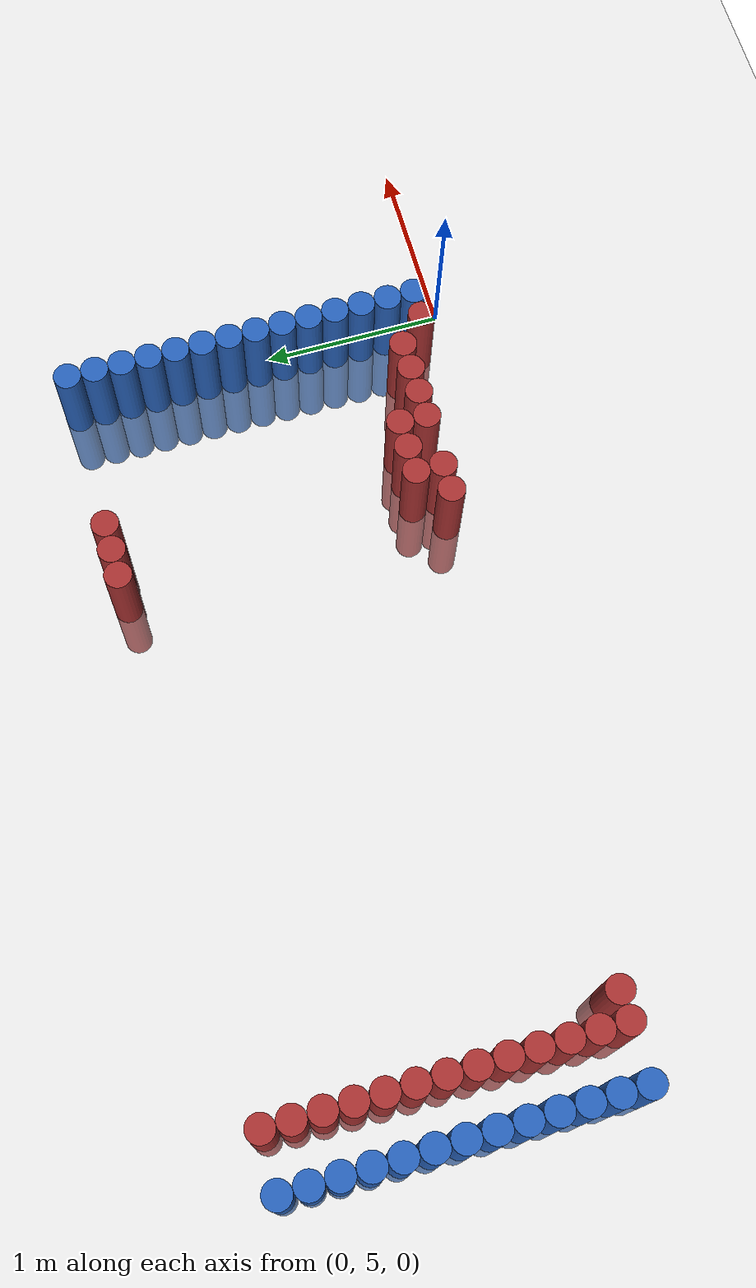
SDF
<sdf version="1.6">
 <world name="default">
  <model name="ground_plane">
   <static>1</static>
   <link name="link">
    <collision name="collision">
     <geometry><plane><normal>0 0 1</normal><size>100 100</size></plane></geometry>
     <surface><friction><ode><mu>100</mu><mu2>50</mu2></ode></friction></surface>
    </collision>
    <visual name="visual">
     <cast_shadows>0</cast_shadows>
     <geometry><plane><normal>0 0 1</normal><size>100 100</size></plane></geometry>
     <material>
      <script><uri>file://media/materials/scripts/gazebo.material</uri><name>Gazebo/Grey</name></script>
     </material>
    </visual>
   </link>
  </model>
  <model name="unit_cylinder_97">
   <static>1</static>
   <pose>-4.425000 5.325000 0.000000 0.000000 0.000000 0.000000</pose>
   <link name="link">
    <inertial>
     <mass>1</mass>
     <inertia><ixx>0.145833</ixx><ixy>0</ixy><ixz>0</ixz><iyy>0.145833</iyy><iyz>0</iyz><izz>0.125</izz></inertia>
    </inertial>
    <collision name="collision">
     <geometry><cylinder><radius>0.075000</radius><length>1</length></cylinder></geometry>
    </collision>
    <visual name="visual">
     <geometry><cylinder><radius>0.075000</radius><length>1</length></cylinder></geometry>
     <material>
      <ambient>0.152000 0.379000 0.720000 1</ambient>
      <diffuse>0.152000 0.379000 0.720000 1</diffuse>
     </material>
     <material>
      <script><name>Gazebo/Grey</name><uri>file://media/materials/scripts/gazebo.material</uri></script>
     </material>
    </visual>
   </link>
  </model>
  <model name="unit_cylinder_98">
   <static>1</static>
   <pose>-4.425000 5.475000 0.000000 0.000000 0.000000 0.000000</pose>
   <link name="link">
    <inertial>
     <mass>1</mass>
     <inertia><ixx>0.145833</ixx><ixy>0</ixy><ixz>0</ixz><iyy>0.145833</iyy><iyz>0</iyz><izz>0.125</izz></inertia>
    </inertial>
    <collision name="collision">
     <geometry><cylinder><radius>0.075000</radius><length>1</length></cylinder></geometry>
    </collision>
    <visual name="visual">
     <geometry><cylinder><radius>0.075000</radius><length>1</length></cylinder></geometry>
     <material>
      <ambient>0.152000 0.379000 0.720000 1</ambient>
      <diffuse>0.152000 0.379000 0.720000 1</diffuse>
     </material>
     <material>
      <script><name>Gazebo/Grey</name><uri>file://media/materials/scripts/gazebo.material</uri></script>
     </material>
    </visual>
   </link>
  </model>
  <model name="unit_cylinder_99">
   <static>1</static>
   <pose>-4.425000 5.625000 0.000000 0.000000 0.000000 0.000000</pose>
   <link name="link">
    <inertial>
     <mass>1</mass>
     <inertia><ixx>0.145833</ixx><ixy>0</ixy><ixz>0</ixz><iyy>0.145833</iyy><iyz>0</iyz><izz>0.125</izz></inertia>
    </inertial>
    <collision name="collision">
     <geometry><cylinder><radius>0.075000</radius><length>1</length></cylinder></geometry>
    </collision>
    <visual name="visual">
     <geometry><cylinder><radius>0.075000</radius><length>1</length></cylinder></geometry>
     <material>
      <ambient>0.152000 0.379000 0.720000 1</ambient>
      <diffuse>0.152000 0.379000 0.720000 1</diffuse>
     </material>
     <material>
      <script><name>Gazebo/Grey</name><uri>file://media/materials/scripts/gazebo.material</uri></script>
     </material>
    </visual>
   </link>
  </model>
  <model name="unit_cylinder_100">
   <static>1</static>
   <pose>-4.425000 5.775000 0.000000 0.000000 0.000000 0.000000</pose>
   <link name="link">
    <inertial>
     <mass>1</mass>
     <inertia><ixx>0.145833</ixx><ixy>0</ixy><ixz>0</ixz><iyy>0.145833</iyy><iyz>0</iyz><izz>0.125</izz></inertia>
    </inertial>
    <collision name="collision">
     <geometry><cylinder><radius>0.075000</radius><length>1</length></cylinder></geometry>
    </collision>
    <visual name="visual">
     <geometry><cylinder><radius>0.075000</radius><length>1</length></cylinder></geometry>
     <material>
      <ambient>0.152000 0.379000 0.720000 1</ambient>
      <diffuse>0.152000 0.379000 0.720000 1</diffuse>
     </material>
     <material>
      <script><name>Gazebo/Grey</name><uri>file://media/materials/scripts/gazebo.material</uri></script>
     </material>
    </visual>
   </link>
  </model>
  <model name="unit_cylinder_101">
   <static>1</static>
   <pose>-4.425000 5.925000 0.000000 0.000000 0.000000 0.000000</pose>
   <link name="link">
    <inertial>
     <mass>1</mass>
     <inertia><ixx>0.145833</ixx><ixy>0</ixy><ixz>0</ixz><iyy>0.145833</iyy><iyz>0</iyz><izz>0.125</izz></inertia>
    </inertial>
    <collision name="collision">
     <geometry><cylinder><radius>0.075000</radius><length>1</length></cylinder></geometry>
    </collision>
    <visual name="visual">
     <geometry><cylinder><radius>0.075000</radius><length>1</length></cylinder></geometry>
     <material>
      <ambient>0.152000 0.379000 0.720000 1</ambient>
      <diffuse>0.152000 0.379000 0.720000 1</diffuse>
     </material>
     <material>
      <script><name>Gazebo/Grey</name><uri>file://media/materials/scripts/gazebo.material</uri></script>
     </material>
    </visual>
   </link>
  </model>
  <model name="unit_cylinder_102">
   <static>1</static>
   <pose>-4.425000 6.075000 0.000000 0.000000 0.000000 0.000000</pose>
   <link name="link">
    <inertial>
     <mass>1</mass>
     <inertia><ixx>0.145833</ixx><ixy>0</ixy><ixz>0</ixz><iyy>0.145833</iyy><iyz>0</iyz><izz>0.125</izz></inertia>
    </inertial>
    <collision name="collision">
     <geometry><cylinder><radius>0.075000</radius><length>1</length></cylinder></geometry>
    </collision>
    <visual name="visual">
     <geometry><cylinder><radius>0.075000</radius><length>1</length></cylinder></geometry>
     <material>
      <ambient>0.152000 0.379000 0.720000 1</ambient>
      <diffuse>0.152000 0.379000 0.720000 1</diffuse>
     </material>
     <material>
      <script><name>Gazebo/Grey</name><uri>file://media/materials/scripts/gazebo.material</uri></script>
     </material>
    </visual>
   </link>
  </model>
  <model name="unit_cylinder_103">
   <static>1</static>
   <pose>-4.425000 6.225000 0.000000 0.000000 0.000000 0.000000</pose>
   <link name="link">
    <inertial>
     <mass>1</mass>
     <inertia><ixx>0.145833</ixx><ixy>0</ixy><ixz>0</ixz><iyy>0.145833</iyy><iyz>0</iyz><izz>0.125</izz></inertia>
    </inertial>
    <collision name="collision">
     <geometry><cylinder><radius>0.075000</radius><length>1</length></cylinder></geometry>
    </collision>
    <visual name="visual">
     <geometry><cylinder><radius>0.075000</radius><length>1</length></cylinder></geometry>
     <material>
      <ambient>0.152000 0.379000 0.720000 1</ambient>
      <diffuse>0.152000 0.379000 0.720000 1</diffuse>
     </material>
     <material>
      <script><name>Gazebo/Grey</name><uri>file://media/materials/scripts/gazebo.material</uri></script>
     </material>
    </visual>
   </link>
  </model>
  <model name="unit_cylinder_104">
   <static>1</static>
   <pose>-4.425000 6.375000 0.000000 0.000000 0.000000 0.000000</pose>
   <link name="link">
    <inertial>
     <mass>1</mass>
     <inertia><ixx>0.145833</ixx><ixy>0</ixy><ixz>0</ixz><iyy>0.145833</iyy><iyz>0</iyz><izz>0.125</izz></inertia>
    </inertial>
    <collision name="collision">
     <geometry><cylinder><radius>0.075000</radius><length>1</length></cylinder></geometry>
    </collision>
    <visual name="visual">
     <geometry><cylinder><radius>0.075000</radius><length>1</length></cylinder></geometry>
     <material>
      <ambient>0.152000 0.379000 0.720000 1</ambient>
      <diffuse>0.152000 0.379000 0.720000 1</diffuse>
     </material>
     <material>
      <script><name>Gazebo/Grey</name><uri>file://media/materials/scripts/gazebo.material</uri></script>
     </material>
    </visual>
   </link>
  </model>
  <model name="unit_cylinder_105">
   <static>1</static>
   <pose>-4.425000 6.525000 0.000000 0.000000 0.000000 0.000000</pose>
   <link name="link">
    <inertial>
     <mass>1</mass>
     <inertia><ixx>0.145833</ixx><ixy>0</ixy><ixz>0</ixz><iyy>0.145833</iyy><iyz>0</iyz><izz>0.125</izz></inertia>
    </inertial>
    <collision name="collision">
     <geometry><cylinder><radius>0.075000</radius><length>1</length></cylinder></geometry>
    </collision>
    <visual name="visual">
     <geometry><cylinder><radius>0.075000</radius><length>1</length></cylinder></geometry>
     <material>
      <ambient>0.152000 0.379000 0.720000 1</ambient>
      <diffuse>0.152000 0.379000 0.720000 1</diffuse>
     </material>
     <material>
      <script><name>Gazebo/Grey</name><uri>file://media/materials/scripts/gazebo.material</uri></script>
     </material>
    </visual>
   </link>
  </model>
  <model name="unit_cylinder_106">
   <static>1</static>
   <pose>-4.425000 6.675000 0.000000 0.000000 0.000000 0.000000</pose>
   <link name="link">
    <inertial>
     <mass>1</mass>
     <inertia><ixx>0.145833</ixx><ixy>0</ixy><ixz>0</ixz><iyy>0.145833</iyy><iyz>0</iyz><izz>0.125</izz></inertia>
    </inertial>
    <collision name="collision">
     <geometry><cylinder><radius>0.075000</radius><length>1</length></cylinder></geometry>
    </collision>
    <visual name="visual">
     <geometry><cylinder><radius>0.075000</radius><length>1</length></cylinder></geometry>
     <material>
      <ambient>0.152000 0.379000 0.720000 1</ambient>
      <diffuse>0.152000 0.379000 0.720000 1</diffuse>
     </material>
     <material>
      <script><name>Gazebo/Grey</name><uri>file://media/materials/scripts/gazebo.material</uri></script>
     </material>
    </visual>
   </link>
  </model>
  <model name="unit_cylinder_107">
   <static>1</static>
   <pose>-4.425000 6.825000 0.000000 0.000000 0.000000 0.000000</pose>
   <link name="link">
    <inertial>
     <mass>1</mass>
     <inertia><ixx>0.145833</ixx><ixy>0</ixy><ixz>0</ixz><iyy>0.145833</iyy><iyz>0</iyz><izz>0.125</izz></inertia>
    </inertial>
    <collision name="collision">
     <geometry><cylinder><radius>0.075000</radius><length>1</length></cylinder></geometry>
    </collision>
    <visual name="visual">
     <geometry><cylinder><radius>0.075000</radius><length>1</length></cylinder></geometry>
     <material>
      <ambient>0.152000 0.379000 0.720000 1</ambient>
      <diffuse>0.152000 0.379000 0.720000 1</diffuse>
     </material>
     <material>
      <script><name>Gazebo/Grey</name><uri>file://media/materials/scripts/gazebo.material</uri></script>
     </material>
    </visual>
   </link>
  </model>
  <model name="unit_cylinder_108">
   <static>1</static>
   <pose>-4.425000 6.975000 0.000000 0.000000 0.000000 0.000000</pose>
   <link name="link">
    <inertial>
     <mass>1</mass>
     <inertia><ixx>0.145833</ixx><ixy>0</ixy><ixz>0</ixz><iyy>0.145833</iyy><iyz>0</iyz><izz>0.125</izz></inertia>
    </inertial>
    <collision name="collision">
     <geometry><cylinder><radius>0.075000</radius><length>1</length></cylinder></geometry>
    </collision>
    <visual name="visual">
     <geometry><cylinder><radius>0.075000</radius><length>1</length></cylinder></geometry>
     <material>
      <ambient>0.152000 0.379000 0.720000 1</ambient>
      <diffuse>0.152000 0.379000 0.720000 1</diffuse>
     </material>
     <material>
      <script><name>Gazebo/Grey</name><uri>file://media/materials/scripts/gazebo.material</uri></script>
     </material>
    </visual>
   </link>
  </model>
  <model name="unit_cylinder_109">
   <static>1</static>
   <pose>-4.425000 7.125000 0.000000 0.000000 0.000000 0.000000</pose>
   <link name="link">
    <inertial>
     <mass>1</mass>
     <inertia><ixx>0.145833</ixx><ixy>0</ixy><ixz>0</ixz><iyy>0.145833</iyy><iyz>0</iyz><izz>0.125</izz></inertia>
    </inertial>
    <collision name="collision">
     <geometry><cylinder><radius>0.075000</radius><length>1</length></cylinder></geometry>
    </collision>
    <visual name="visual">
     <geometry><cylinder><radius>0.075000</radius><length>1</length></cylinder></geometry>
     <material>
      <ambient>0.152000 0.379000 0.720000 1</ambient>
      <diffuse>0.152000 0.379000 0.720000 1</diffuse>
     </material>
     <material>
      <script><name>Gazebo/Grey</name><uri>file://media/materials/scripts/gazebo.material</uri></script>
     </material>
    </visual>
   </link>
  </model>
  <model name="unit_cylinder_129">
   <static>1</static>
   <pose>-4.125000 5.325000 0.000000 0.000000 0.000000 0.000000</pose>
   <link name="link">
    <inertial>
     <mass>1</mass>
     <inertia><ixx>0.145833</ixx><ixy>0</ixy><ixz>0</ixz><iyy>0.145833</iyy><iyz>0</iyz><izz>0.125</izz></inertia>
    </inertial>
    <collision name="collision">
     <geometry><cylinder><radius>0.075000</radius><length>1</length></cylinder></geometry>
    </collision>
    <visual name="visual">
     <geometry><cylinder><radius>0.075000</radius><length>1</length></cylinder></geometry>
     <material>
      <ambient>0.648000 0.192000 0.192000 1</ambient>
      <diffuse>0.648000 0.192000 0.192000 1</diffuse>
     </material>
     <material>
      <script><name>Gazebo/Grey</name><uri>file://media/materials/scripts/gazebo.material</uri></script>
     </material>
    </visual>
   </link>
  </model>
  <model name="unit_cylinder_130">
   <static>1</static>
   <pose>-4.125000 5.475000 0.000000 0.000000 0.000000 0.000000</pose>
   <link name="link">
    <inertial>
     <mass>1</mass>
     <inertia><ixx>0.145833</ixx><ixy>0</ixy><ixz>0</ixz><iyy>0.145833</iyy><iyz>0</iyz><izz>0.125</izz></inertia>
    </inertial>
    <collision name="collision">
     <geometry><cylinder><radius>0.075000</radius><length>1</length></cylinder></geometry>
    </collision>
    <visual name="visual">
     <geometry><cylinder><radius>0.075000</radius><length>1</length></cylinder></geometry>
     <material>
      <ambient>0.648000 0.192000 0.192000 1</ambient>
      <diffuse>0.648000 0.192000 0.192000 1</diffuse>
     </material>
     <material>
      <script><name>Gazebo/Grey</name><uri>file://media/materials/scripts/gazebo.material</uri></script>
     </material>
    </visual>
   </link>
  </model>
  <model name="unit_cylinder_131">
   <static>1</static>
   <pose>-4.125000 5.625000 0.000000 0.000000 0.000000 0.000000</pose>
   <link name="link">
    <inertial>
     <mass>1</mass>
     <inertia><ixx>0.145833</ixx><ixy>0</ixy><ixz>0</ixz><iyy>0.145833</iyy><iyz>0</iyz><izz>0.125</izz></inertia>
    </inertial>
    <collision name="collision">
     <geometry><cylinder><radius>0.075000</radius><length>1</length></cylinder></geometry>
    </collision>
    <visual name="visual">
     <geometry><cylinder><radius>0.075000</radius><length>1</length></cylinder></geometry>
     <material>
      <ambient>0.648000 0.192000 0.192000 1</ambient>
      <diffuse>0.648000 0.192000 0.192000 1</diffuse>
     </material>
     <material>
      <script><name>Gazebo/Grey</name><uri>file://media/materials/scripts/gazebo.material</uri></script>
     </material>
    </visual>
   </link>
  </model>
  <model name="unit_cylinder_132">
   <static>1</static>
   <pose>-4.125000 5.775000 0.000000 0.000000 0.000000 0.000000</pose>
   <link name="link">
    <inertial>
     <mass>1</mass>
     <inertia><ixx>0.145833</ixx><ixy>0</ixy><ixz>0</ixz><iyy>0.145833</iyy><iyz>0</iyz><izz>0.125</izz></inertia>
    </inertial>
    <collision name="collision">
     <geometry><cylinder><radius>0.075000</radius><length>1</length></cylinder></geometry>
    </collision>
    <visual name="visual">
     <geometry><cylinder><radius>0.075000</radius><length>1</length></cylinder></geometry>
     <material>
      <ambient>0.648000 0.192000 0.192000 1</ambient>
      <diffuse>0.648000 0.192000 0.192000 1</diffuse>
     </material>
     <material>
      <script><name>Gazebo/Grey</name><uri>file://media/materials/scripts/gazebo.material</uri></script>
     </material>
    </visual>
   </link>
  </model>
  <model name="unit_cylinder_133">
   <static>1</static>
   <pose>-4.125000 5.925000 0.000000 0.000000 0.000000 0.000000</pose>
   <link name="link">
    <inertial>
     <mass>1</mass>
     <inertia><ixx>0.145833</ixx><ixy>0</ixy><ixz>0</ixz><iyy>0.145833</iyy><iyz>0</iyz><izz>0.125</izz></inertia>
    </inertial>
    <collision name="collision">
     <geometry><cylinder><radius>0.075000</radius><length>1</length></cylinder></geometry>
    </collision>
    <visual name="visual">
     <geometry><cylinder><radius>0.075000</radius><length>1</length></cylinder></geometry>
     <material>
      <ambient>0.648000 0.192000 0.192000 1</ambient>
      <diffuse>0.648000 0.192000 0.192000 1</diffuse>
     </material>
     <material>
      <script><name>Gazebo/Grey</name><uri>file://media/materials/scripts/gazebo.material</uri></script>
     </material>
    </visual>
   </link>
  </model>
  <model name="unit_cylinder_134">
   <static>1</static>
   <pose>-4.125000 6.075000 0.000000 0.000000 0.000000 0.000000</pose>
   <link name="link">
    <inertial>
     <mass>1</mass>
     <inertia><ixx>0.145833</ixx><ixy>0</ixy><ixz>0</ixz><iyy>0.145833</iyy><iyz>0</iyz><izz>0.125</izz></inertia>
    </inertial>
    <collision name="collision">
     <geometry><cylinder><radius>0.075000</radius><length>1</length></cylinder></geometry>
    </collision>
    <visual name="visual">
     <geometry><cylinder><radius>0.075000</radius><length>1</length></cylinder></geometry>
     <material>
      <ambient>0.648000 0.192000 0.192000 1</ambient>
      <diffuse>0.648000 0.192000 0.192000 1</diffuse>
     </material>
     <material>
      <script><name>Gazebo/Grey</name><uri>file://media/materials/scripts/gazebo.material</uri></script>
     </material>
    </visual>
   </link>
  </model>
  <model name="unit_cylinder_135">
   <static>1</static>
   <pose>-4.125000 6.225000 0.000000 0.000000 0.000000 0.000000</pose>
   <link name="link">
    <inertial>
     <mass>1</mass>
     <inertia><ixx>0.145833</ixx><ixy>0</ixy><ixz>0</ixz><iyy>0.145833</iyy><iyz>0</iyz><izz>0.125</izz></inertia>
    </inertial>
    <collision name="collision">
     <geometry><cylinder><radius>0.075000</radius><length>1</length></cylinder></geometry>
    </collision>
    <visual name="visual">
     <geometry><cylinder><radius>0.075000</radius><length>1</length></cylinder></geometry>
     <material>
      <ambient>0.648000 0.192000 0.192000 1</ambient>
      <diffuse>0.648000 0.192000 0.192000 1</diffuse>
     </material>
     <material>
      <script><name>Gazebo/Grey</name><uri>file://media/materials/scripts/gazebo.material</uri></script>
     </material>
    </visual>
   </link>
  </model>
  <model name="unit_cylinder_136">
   <static>1</static>
   <pose>-4.125000 6.375000 0.000000 0.000000 0.000000 0.000000</pose>
   <link name="link">
    <inertial>
     <mass>1</mass>
     <inertia><ixx>0.145833</ixx><ixy>0</ixy><ixz>0</ixz><iyy>0.145833</iyy><iyz>0</iyz><izz>0.125</izz></inertia>
    </inertial>
    <collision name="collision">
     <geometry><cylinder><radius>0.075000</radius><length>1</length></cylinder></geometry>
    </collision>
    <visual name="visual">
     <geometry><cylinder><radius>0.075000</radius><length>1</length></cylinder></geometry>
     <material>
      <ambient>0.648000 0.192000 0.192000 1</ambient>
      <diffuse>0.648000 0.192000 0.192000 1</diffuse>
     </material>
     <material>
      <script><name>Gazebo/Grey</name><uri>file://media/materials/scripts/gazebo.material</uri></script>
     </material>
    </visual>
   </link>
  </model>
  <model name="unit_cylinder_137">
   <static>1</static>
   <pose>-4.125000 6.525000 0.000000 0.000000 0.000000 0.000000</pose>
   <link name="link">
    <inertial>
     <mass>1</mass>
     <inertia><ixx>0.145833</ixx><ixy>0</ixy><ixz>0</ixz><iyy>0.145833</iyy><iyz>0</iyz><izz>0.125</izz></inertia>
    </inertial>
    <collision name="collision">
     <geometry><cylinder><radius>0.075000</radius><length>1</length></cylinder></geometry>
    </collision>
    <visual name="visual">
     <geometry><cylinder><radius>0.075000</radius><length>1</length></cylinder></geometry>
     <material>
      <ambient>0.648000 0.192000 0.192000 1</ambient>
      <diffuse>0.648000 0.192000 0.192000 1</diffuse>
     </material>
     <material>
      <script><name>Gazebo/Grey</name><uri>file://media/materials/scripts/gazebo.material</uri></script>
     </material>
    </visual>
   </link>
  </model>
  <model name="unit_cylinder_138">
   <static>1</static>
   <pose>-4.125000 6.675000 0.000000 0.000000 0.000000 0.000000</pose>
   <link name="link">
    <inertial>
     <mass>1</mass>
     <inertia><ixx>0.145833</ixx><ixy>0</ixy><ixz>0</ixz><iyy>0.145833</iyy><iyz>0</iyz><izz>0.125</izz></inertia>
    </inertial>
    <collision name="collision">
     <geometry><cylinder><radius>0.075000</radius><length>1</length></cylinder></geometry>
    </collision>
    <visual name="visual">
     <geometry><cylinder><radius>0.075000</radius><length>1</length></cylinder></geometry>
     <material>
      <ambient>0.648000 0.192000 0.192000 1</ambient>
      <diffuse>0.648000 0.192000 0.192000 1</diffuse>
     </material>
     <material>
      <script><name>Gazebo/Grey</name><uri>file://media/materials/scripts/gazebo.material</uri></script>
     </material>
    </visual>
   </link>
  </model>
  <model name="unit_cylinder_139">
   <static>1</static>
   <pose>-4.125000 6.825000 0.000000 0.000000 0.000000 0.000000</pose>
   <link name="link">
    <inertial>
     <mass>1</mass>
     <inertia><ixx>0.145833</ixx><ixy>0</ixy><ixz>0</ixz><iyy>0.145833</iyy><iyz>0</iyz><izz>0.125</izz></inertia>
    </inertial>
    <collision name="collision">
     <geometry><cylinder><radius>0.075000</radius><length>1</length></cylinder></geometry>
    </collision>
    <visual name="visual">
     <geometry><cylinder><radius>0.075000</radius><length>1</length></cylinder></geometry>
     <material>
      <ambient>0.648000 0.192000 0.192000 1</ambient>
      <diffuse>0.648000 0.192000 0.192000 1</diffuse>
     </material>
     <material>
      <script><name>Gazebo/Grey</name><uri>file://media/materials/scripts/gazebo.material</uri></script>
     </material>
    </visual>
   </link>
  </model>
  <model name="unit_cylinder_140">
   <static>1</static>
   <pose>-4.125000 6.975000 0.000000 0.000000 0.000000 0.000000</pose>
   <link name="link">
    <inertial>
     <mass>1</mass>
     <inertia><ixx>0.145833</ixx><ixy>0</ixy><ixz>0</ixz><iyy>0.145833</iyy><iyz>0</iyz><izz>0.125</izz></inertia>
    </inertial>
    <collision name="collision">
     <geometry><cylinder><radius>0.075000</radius><length>1</length></cylinder></geometry>
    </collision>
    <visual name="visual">
     <geometry><cylinder><radius>0.075000</radius><length>1</length></cylinder></geometry>
     <material>
      <ambient>0.648000 0.192000 0.192000 1</ambient>
      <diffuse>0.648000 0.192000 0.192000 1</diffuse>
     </material>
     <material>
      <script><name>Gazebo/Grey</name><uri>file://media/materials/scripts/gazebo.material</uri></script>
     </material>
    </visual>
   </link>
  </model>
  <model name="unit_cylinder_141">
   <static>1</static>
   <pose>-4.125000 7.125000 0.000000 0.000000 0.000000 0.000000</pose>
   <link name="link">
    <inertial>
     <mass>1</mass>
     <inertia><ixx>0.145833</ixx><ixy>0</ixy><ixz>0</ixz><iyy>0.145833</iyy><iyz>0</iyz><izz>0.125</izz></inertia>
    </inertial>
    <collision name="collision">
     <geometry><cylinder><radius>0.075000</radius><length>1</length></cylinder></geometry>
    </collision>
    <visual name="visual">
     <geometry><cylinder><radius>0.075000</radius><length>1</length></cylinder></geometry>
     <material>
      <ambient>0.648000 0.192000 0.192000 1</ambient>
      <diffuse>0.648000 0.192000 0.192000 1</diffuse>
     </material>
     <material>
      <script><name>Gazebo/Grey</name><uri>file://media/materials/scripts/gazebo.material</uri></script>
     </material>
    </visual>
   </link>
  </model>
  <model name="unit_cylinder_151">
   <static>1</static>
   <pose>-3.975000 5.325000 0.000000 0.000000 0.000000 0.000000</pose>
   <link name="link">
    <inertial>
     <mass>1</mass>
     <inertia><ixx>0.145833</ixx><ixy>0</ixy><ixz>0</ixz><iyy>0.145833</iyy><iyz>0</iyz><izz>0.125</izz></inertia>
    </inertial>
    <collision name="collision">
     <geometry><cylinder><radius>0.075000</radius><length>1</length></cylinder></geometry>
    </collision>
    <visual name="visual">
     <geometry><cylinder><radius>0.075000</radius><length>1</length></cylinder></geometry>
     <material>
      <ambient>0.648000 0.192000 0.192000 1</ambient>
      <diffuse>0.648000 0.192000 0.192000 1</diffuse>
     </material>
     <material>
      <script><name>Gazebo/Grey</name><uri>file://media/materials/scripts/gazebo.material</uri></script>
     </material>
    </visual>
   </link>
  </model>
  <model name="unit_cylinder_193">
   <static>1</static>
   <pose>-1.275000 5.325000 0.000000 0.000000 0.000000 0.000000</pose>
   <link name="link">
    <inertial>
     <mass>1</mass>
     <inertia><ixx>0.145833</ixx><ixy>0</ixy><ixz>0</ixz><iyy>0.145833</iyy><iyz>0</iyz><izz>0.125</izz></inertia>
    </inertial>
    <collision name="collision">
     <geometry><cylinder><radius>0.075000</radius><length>1</length></cylinder></geometry>
    </collision>
    <visual name="visual">
     <geometry><cylinder><radius>0.075000</radius><length>1</length></cylinder></geometry>
     <material>
      <ambient>0.648000 0.192000 0.192000 1</ambient>
      <diffuse>0.648000 0.192000 0.192000 1</diffuse>
     </material>
     <material>
      <script><name>Gazebo/Grey</name><uri>file://media/materials/scripts/gazebo.material</uri></script>
     </material>
    </visual>
   </link>
  </model>
  <model name="unit_cylinder_194">
   <static>1</static>
   <pose>-1.275000 7.125000 0.000000 0.000000 0.000000 0.000000</pose>
   <link name="link">
    <inertial>
     <mass>1</mass>
     <inertia><ixx>0.145833</ixx><ixy>0</ixy><ixz>0</ixz><iyy>0.145833</iyy><iyz>0</iyz><izz>0.125</izz></inertia>
    </inertial>
    <collision name="collision">
     <geometry><cylinder><radius>0.075000</radius><length>1</length></cylinder></geometry>
    </collision>
    <visual name="visual">
     <geometry><cylinder><radius>0.075000</radius><length>1</length></cylinder></geometry>
     <material>
      <ambient>0.648000 0.192000 0.192000 1</ambient>
      <diffuse>0.648000 0.192000 0.192000 1</diffuse>
     </material>
     <material>
      <script><name>Gazebo/Grey</name><uri>file://media/materials/scripts/gazebo.material</uri></script>
     </material>
    </visual>
   </link>
  </model>
  <model name="unit_cylinder_199">
   <static>1</static>
   <pose>-1.125000 5.325000 0.000000 0.000000 0.000000 0.000000</pose>
   <link name="link">
    <inertial>
     <mass>1</mass>
     <inertia><ixx>0.145833</ixx><ixy>0</ixy><ixz>0</ixz><iyy>0.145833</iyy><iyz>0</iyz><izz>0.125</izz></inertia>
    </inertial>
    <collision name="collision">
     <geometry><cylinder><radius>0.075000</radius><length>1</length></cylinder></geometry>
    </collision>
    <visual name="visual">
     <geometry><cylinder><radius>0.075000</radius><length>1</length></cylinder></geometry>
     <material>
      <ambient>0.648000 0.192000 0.192000 1</ambient>
      <diffuse>0.648000 0.192000 0.192000 1</diffuse>
     </material>
     <material>
      <script><name>Gazebo/Grey</name><uri>file://media/materials/scripts/gazebo.material</uri></script>
     </material>
    </visual>
   </link>
  </model>
  <model name="unit_cylinder_200">
   <static>1</static>
   <pose>-1.125000 5.475000 0.000000 0.000000 0.000000 0.000000</pose>
   <link name="link">
    <inertial>
     <mass>1</mass>
     <inertia><ixx>0.145833</ixx><ixy>0</ixy><ixz>0</ixz><iyy>0.145833</iyy><iyz>0</iyz><izz>0.125</izz></inertia>
    </inertial>
    <collision name="collision">
     <geometry><cylinder><radius>0.075000</radius><length>1</length></cylinder></geometry>
    </collision>
    <visual name="visual">
     <geometry><cylinder><radius>0.075000</radius><length>1</length></cylinder></geometry>
     <material>
      <ambient>0.648000 0.192000 0.192000 1</ambient>
      <diffuse>0.648000 0.192000 0.192000 1</diffuse>
     </material>
     <material>
      <script><name>Gazebo/Grey</name><uri>file://media/materials/scripts/gazebo.material</uri></script>
     </material>
    </visual>
   </link>
  </model>
  <model name="unit_cylinder_201">
   <static>1</static>
   <pose>-1.125000 7.125000 0.000000 0.000000 0.000000 0.000000</pose>
   <link name="link">
    <inertial>
     <mass>1</mass>
     <inertia><ixx>0.145833</ixx><ixy>0</ixy><ixz>0</ixz><iyy>0.145833</iyy><iyz>0</iyz><izz>0.125</izz></inertia>
    </inertial>
    <collision name="collision">
     <geometry><cylinder><radius>0.075000</radius><length>1</length></cylinder></geometry>
    </collision>
    <visual name="visual">
     <geometry><cylinder><radius>0.075000</radius><length>1</length></cylinder></geometry>
     <material>
      <ambient>0.648000 0.192000 0.192000 1</ambient>
      <diffuse>0.648000 0.192000 0.192000 1</diffuse>
     </material>
     <material>
      <script><name>Gazebo/Grey</name><uri>file://media/materials/scripts/gazebo.material</uri></script>
     </material>
    </visual>
   </link>
  </model>
  <model name="unit_cylinder_204">
   <static>1</static>
   <pose>-0.975000 5.475000 0.000000 0.000000 0.000000 0.000000</pose>
   <link name="link">
    <inertial>
     <mass>1</mass>
     <inertia><ixx>0.145833</ixx><ixy>0</ixy><ixz>0</ixz><iyy>0.145833</iyy><iyz>0</iyz><izz>0.125</izz></inertia>
    </inertial>
    <collision name="collision">
     <geometry><cylinder><radius>0.075000</radius><length>1</length></cylinder></geometry>
    </collision>
    <visual name="visual">
     <geometry><cylinder><radius>0.075000</radius><length>1</length></cylinder></geometry>
     <material>
      <ambient>0.648000 0.192000 0.192000 1</ambient>
      <diffuse>0.648000 0.192000 0.192000 1</diffuse>
     </material>
     <material>
      <script><name>Gazebo/Grey</name><uri>file://media/materials/scripts/gazebo.material</uri></script>
     </material>
    </visual>
   </link>
  </model>
  <model name="unit_cylinder_205">
   <static>1</static>
   <pose>-0.975000 7.125000 0.000000 0.000000 0.000000 0.000000</pose>
   <link name="link">
    <inertial>
     <mass>1</mass>
     <inertia><ixx>0.145833</ixx><ixy>0</ixy><ixz>0</ixz><iyy>0.145833</iyy><iyz>0</iyz><izz>0.125</izz></inertia>
    </inertial>
    <collision name="collision">
     <geometry><cylinder><radius>0.075000</radius><length>1</length></cylinder></geometry>
    </collision>
    <visual name="visual">
     <geometry><cylinder><radius>0.075000</radius><length>1</length></cylinder></geometry>
     <material>
      <ambient>0.648000 0.192000 0.192000 1</ambient>
      <diffuse>0.648000 0.192000 0.192000 1</diffuse>
     </material>
     <material>
      <script><name>Gazebo/Grey</name><uri>file://media/materials/scripts/gazebo.material</uri></script>
     </material>
    </visual>
   </link>
  </model>
  <model name="unit_cylinder_212">
   <static>1</static>
   <pose>-0.825000 5.325000 0.000000 0.000000 0.000000 0.000000</pose>
   <link name="link">
    <inertial>
     <mass>1</mass>
     <inertia><ixx>0.145833</ixx><ixy>0</ixy><ixz>0</ixz><iyy>0.145833</iyy><iyz>0</iyz><izz>0.125</izz></inertia>
    </inertial>
    <collision name="collision">
     <geometry><cylinder><radius>0.075000</radius><length>1</length></cylinder></geometry>
    </collision>
    <visual name="visual">
     <geometry><cylinder><radius>0.075000</radius><length>1</length></cylinder></geometry>
     <material>
      <ambient>0.648000 0.192000 0.192000 1</ambient>
      <diffuse>0.648000 0.192000 0.192000 1</diffuse>
     </material>
     <material>
      <script><name>Gazebo/Grey</name><uri>file://media/materials/scripts/gazebo.material</uri></script>
     </material>
    </visual>
   </link>
  </model>
  <model name="unit_cylinder_213">
   <static>1</static>
   <pose>-0.825000 5.475000 0.000000 0.000000 0.000000 0.000000</pose>
   <link name="link">
    <inertial>
     <mass>1</mass>
     <inertia><ixx>0.145833</ixx><ixy>0</ixy><ixz>0</ixz><iyy>0.145833</iyy><iyz>0</iyz><izz>0.125</izz></inertia>
    </inertial>
    <collision name="collision">
     <geometry><cylinder><radius>0.075000</radius><length>1</length></cylinder></geometry>
    </collision>
    <visual name="visual">
     <geometry><cylinder><radius>0.075000</radius><length>1</length></cylinder></geometry>
     <material>
      <ambient>0.648000 0.192000 0.192000 1</ambient>
      <diffuse>0.648000 0.192000 0.192000 1</diffuse>
     </material>
     <material>
      <script><name>Gazebo/Grey</name><uri>file://media/materials/scripts/gazebo.material</uri></script>
     </material>
    </visual>
   </link>
  </model>
  <model name="unit_cylinder_225">
   <static>1</static>
   <pose>-0.675000 5.325000 0.000000 0.000000 0.000000 0.000000</pose>
   <link name="link">
    <inertial>
     <mass>1</mass>
     <inertia><ixx>0.145833</ixx><ixy>0</ixy><ixz>0</ixz><iyy>0.145833</iyy><iyz>0</iyz><izz>0.125</izz></inertia>
    </inertial>
    <collision name="collision">
     <geometry><cylinder><radius>0.075000</radius><length>1</length></cylinder></geometry>
    </collision>
    <visual name="visual">
     <geometry><cylinder><radius>0.075000</radius><length>1</length></cylinder></geometry>
     <material>
      <ambient>0.648000 0.192000 0.192000 1</ambient>
      <diffuse>0.648000 0.192000 0.192000 1</diffuse>
     </material>
     <material>
      <script><name>Gazebo/Grey</name><uri>file://media/materials/scripts/gazebo.material</uri></script>
     </material>
    </visual>
   </link>
  </model>
  <model name="unit_cylinder_229">
   <static>1</static>
   <pose>-0.525000 5.325000 0.000000 0.000000 0.000000 0.000000</pose>
   <link name="link">
    <inertial>
     <mass>1</mass>
     <inertia><ixx>0.145833</ixx><ixy>0</ixy><ixz>0</ixz><iyy>0.145833</iyy><iyz>0</iyz><izz>0.125</izz></inertia>
    </inertial>
    <collision name="collision">
     <geometry><cylinder><radius>0.075000</radius><length>1</length></cylinder></geometry>
    </collision>
    <visual name="visual">
     <geometry><cylinder><radius>0.075000</radius><length>1</length></cylinder></geometry>
     <material>
      <ambient>0.648000 0.192000 0.192000 1</ambient>
      <diffuse>0.648000 0.192000 0.192000 1</diffuse>
     </material>
     <material>
      <script><name>Gazebo/Grey</name><uri>file://media/materials/scripts/gazebo.material</uri></script>
     </material>
    </visual>
   </link>
  </model>
  <model name="unit_cylinder_233">
   <static>1</static>
   <pose>-0.375000 5.325000 0.000000 0.000000 0.000000 0.000000</pose>
   <link name="link">
    <inertial>
     <mass>1</mass>
     <inertia><ixx>0.145833</ixx><ixy>0</ixy><ixz>0</ixz><iyy>0.145833</iyy><iyz>0</iyz><izz>0.125</izz></inertia>
    </inertial>
    <collision name="collision">
     <geometry><cylinder><radius>0.075000</radius><length>1</length></cylinder></geometry>
    </collision>
    <visual name="visual">
     <geometry><cylinder><radius>0.075000</radius><length>1</length></cylinder></geometry>
     <material>
      <ambient>0.648000 0.192000 0.192000 1</ambient>
      <diffuse>0.648000 0.192000 0.192000 1</diffuse>
     </material>
     <material>
      <script><name>Gazebo/Grey</name><uri>file://media/materials/scripts/gazebo.material</uri></script>
     </material>
    </visual>
   </link>
  </model>
  <model name="unit_cylinder_236">
   <static>1</static>
   <pose>-0.225000 5.175000 0.000000 0.000000 0.000000 0.000000</pose>
   <link name="link">
    <inertial>
     <mass>1</mass>
     <inertia><ixx>0.145833</ixx><ixy>0</ixy><ixz>0</ixz><iyy>0.145833</iyy><iyz>0</iyz><izz>0.125</izz></inertia>
    </inertial>
    <collision name="collision">
     <geometry><cylinder><radius>0.075000</radius><length>1</length></cylinder></geometry>
    </collision>
    <visual name="visual">
     <geometry><cylinder><radius>0.075000</radius><length>1</length></cylinder></geometry>
     <material>
      <ambient>0.648000 0.192000 0.192000 1</ambient>
      <diffuse>0.648000 0.192000 0.192000 1</diffuse>
     </material>
     <material>
      <script><name>Gazebo/Grey</name><uri>file://media/materials/scripts/gazebo.material</uri></script>
     </material>
    </visual>
   </link>
  </model>
  <model name="unit_cylinder_239">
   <static>1</static>
   <pose>-0.075000 5.175000 0.000000 0.000000 0.000000 0.000000</pose>
   <link name="link">
    <inertial>
     <mass>1</mass>
     <inertia><ixx>0.145833</ixx><ixy>0</ixy><ixz>0</ixz><iyy>0.145833</iyy><iyz>0</iyz><izz>0.125</izz></inertia>
    </inertial>
    <collision name="collision">
     <geometry><cylinder><radius>0.075000</radius><length>1</length></cylinder></geometry>
    </collision>
    <visual name="visual">
     <geometry><cylinder><radius>0.075000</radius><length>1</length></cylinder></geometry>
     <material>
      <ambient>0.152000 0.379000 0.720000 1</ambient>
      <diffuse>0.152000 0.379000 0.720000 1</diffuse>
     </material>
     <material>
      <script><name>Gazebo/Grey</name><uri>file://media/materials/scripts/gazebo.material</uri></script>
     </material>
    </visual>
   </link>
  </model>
  <model name="unit_cylinder_240">
   <static>1</static>
   <pose>-0.075000 5.325000 0.000000 0.000000 0.000000 0.000000</pose>
   <link name="link">
    <inertial>
     <mass>1</mass>
     <inertia><ixx>0.145833</ixx><ixy>0</ixy><ixz>0</ixz><iyy>0.145833</iyy><iyz>0</iyz><izz>0.125</izz></inertia>
    </inertial>
    <collision name="collision">
     <geometry><cylinder><radius>0.075000</radius><length>1</length></cylinder></geometry>
    </collision>
    <visual name="visual">
     <geometry><cylinder><radius>0.075000</radius><length>1</length></cylinder></geometry>
     <material>
      <ambient>0.152000 0.379000 0.720000 1</ambient>
      <diffuse>0.152000 0.379000 0.720000 1</diffuse>
     </material>
     <material>
      <script><name>Gazebo/Grey</name><uri>file://media/materials/scripts/gazebo.material</uri></script>
     </material>
    </visual>
   </link>
  </model>
  <model name="unit_cylinder_241">
   <static>1</static>
   <pose>-0.075000 5.475000 0.000000 0.000000 0.000000 0.000000</pose>
   <link name="link">
    <inertial>
     <mass>1</mass>
     <inertia><ixx>0.145833</ixx><ixy>0</ixy><ixz>0</ixz><iyy>0.145833</iyy><iyz>0</iyz><izz>0.125</izz></inertia>
    </inertial>
    <collision name="collision">
     <geometry><cylinder><radius>0.075000</radius><length>1</length></cylinder></geometry>
    </collision>
    <visual name="visual">
     <geometry><cylinder><radius>0.075000</radius><length>1</length></cylinder></geometry>
     <material>
      <ambient>0.152000 0.379000 0.720000 1</ambient>
      <diffuse>0.152000 0.379000 0.720000 1</diffuse>
     </material>
     <material>
      <script><name>Gazebo/Grey</name><uri>file://media/materials/scripts/gazebo.material</uri></script>
     </material>
    </visual>
   </link>
  </model>
  <model name="unit_cylinder_242">
   <static>1</static>
   <pose>-0.075000 5.625000 0.000000 0.000000 0.000000 0.000000</pose>
   <link name="link">
    <inertial>
     <mass>1</mass>
     <inertia><ixx>0.145833</ixx><ixy>0</ixy><ixz>0</ixz><iyy>0.145833</iyy><iyz>0</iyz><izz>0.125</izz></inertia>
    </inertial>
    <collision name="collision">
     <geometry><cylinder><radius>0.075000</radius><length>1</length></cylinder></geometry>
    </collision>
    <visual name="visual">
     <geometry><cylinder><radius>0.075000</radius><length>1</length></cylinder></geometry>
     <material>
      <ambient>0.152000 0.379000 0.720000 1</ambient>
      <diffuse>0.152000 0.379000 0.720000 1</diffuse>
     </material>
     <material>
      <script><name>Gazebo/Grey</name><uri>file://media/materials/scripts/gazebo.material</uri></script>
     </material>
    </visual>
   </link>
  </model>
  <model name="unit_cylinder_243">
   <static>1</static>
   <pose>-0.075000 5.775000 0.000000 0.000000 0.000000 0.000000</pose>
   <link name="link">
    <inertial>
     <mass>1</mass>
     <inertia><ixx>0.145833</ixx><ixy>0</ixy><ixz>0</ixz><iyy>0.145833</iyy><iyz>0</iyz><izz>0.125</izz></inertia>
    </inertial>
    <collision name="collision">
     <geometry><cylinder><radius>0.075000</radius><length>1</length></cylinder></geometry>
    </collision>
    <visual name="visual">
     <geometry><cylinder><radius>0.075000</radius><length>1</length></cylinder></geometry>
     <material>
      <ambient>0.152000 0.379000 0.720000 1</ambient>
      <diffuse>0.152000 0.379000 0.720000 1</diffuse>
     </material>
     <material>
      <script><name>Gazebo/Grey</name><uri>file://media/materials/scripts/gazebo.material</uri></script>
     </material>
    </visual>
   </link>
  </model>
  <model name="unit_cylinder_244">
   <static>1</static>
   <pose>-0.075000 5.925000 0.000000 0.000000 0.000000 0.000000</pose>
   <link name="link">
    <inertial>
     <mass>1</mass>
     <inertia><ixx>0.145833</ixx><ixy>0</ixy><ixz>0</ixz><iyy>0.145833</iyy><iyz>0</iyz><izz>0.125</izz></inertia>
    </inertial>
    <collision name="collision">
     <geometry><cylinder><radius>0.075000</radius><length>1</length></cylinder></geometry>
    </collision>
    <visual name="visual">
     <geometry><cylinder><radius>0.075000</radius><length>1</length></cylinder></geometry>
     <material>
      <ambient>0.152000 0.379000 0.720000 1</ambient>
      <diffuse>0.152000 0.379000 0.720000 1</diffuse>
     </material>
     <material>
      <script><name>Gazebo/Grey</name><uri>file://media/materials/scripts/gazebo.material</uri></script>
     </material>
    </visual>
   </link>
  </model>
  <model name="unit_cylinder_245">
   <static>1</static>
   <pose>-0.075000 6.075000 0.000000 0.000000 0.000000 0.000000</pose>
   <link name="link">
    <inertial>
     <mass>1</mass>
     <inertia><ixx>0.145833</ixx><ixy>0</ixy><ixz>0</ixz><iyy>0.145833</iyy><iyz>0</iyz><izz>0.125</izz></inertia>
    </inertial>
    <collision name="collision">
     <geometry><cylinder><radius>0.075000</radius><length>1</length></cylinder></geometry>
    </collision>
    <visual name="visual">
     <geometry><cylinder><radius>0.075000</radius><length>1</length></cylinder></geometry>
     <material>
      <ambient>0.152000 0.379000 0.720000 1</ambient>
      <diffuse>0.152000 0.379000 0.720000 1</diffuse>
     </material>
     <material>
      <script><name>Gazebo/Grey</name><uri>file://media/materials/scripts/gazebo.material</uri></script>
     </material>
    </visual>
   </link>
  </model>
  <model name="unit_cylinder_246">
   <static>1</static>
   <pose>-0.075000 6.225000 0.000000 0.000000 0.000000 0.000000</pose>
   <link name="link">
    <inertial>
     <mass>1</mass>
     <inertia><ixx>0.145833</ixx><ixy>0</ixy><ixz>0</ixz><iyy>0.145833</iyy><iyz>0</iyz><izz>0.125</izz></inertia>
    </inertial>
    <collision name="collision">
     <geometry><cylinder><radius>0.075000</radius><length>1</length></cylinder></geometry>
    </collision>
    <visual name="visual">
     <geometry><cylinder><radius>0.075000</radius><length>1</length></cylinder></geometry>
     <material>
      <ambient>0.152000 0.379000 0.720000 1</ambient>
      <diffuse>0.152000 0.379000 0.720000 1</diffuse>
     </material>
     <material>
      <script><name>Gazebo/Grey</name><uri>file://media/materials/scripts/gazebo.material</uri></script>
     </material>
    </visual>
   </link>
  </model>
  <model name="unit_cylinder_247">
   <static>1</static>
   <pose>-0.075000 6.375000 0.000000 0.000000 0.000000 0.000000</pose>
   <link name="link">
    <inertial>
     <mass>1</mass>
     <inertia><ixx>0.145833</ixx><ixy>0</ixy><ixz>0</ixz><iyy>0.145833</iyy><iyz>0</iyz><izz>0.125</izz></inertia>
    </inertial>
    <collision name="collision">
     <geometry><cylinder><radius>0.075000</radius><length>1</length></cylinder></geometry>
    </collision>
    <visual name="visual">
     <geometry><cylinder><radius>0.075000</radius><length>1</length></cylinder></geometry>
     <material>
      <ambient>0.152000 0.379000 0.720000 1</ambient>
      <diffuse>0.152000 0.379000 0.720000 1</diffuse>
     </material>
     <material>
      <script><name>Gazebo/Grey</name><uri>file://media/materials/scripts/gazebo.material</uri></script>
     </material>
    </visual>
   </link>
  </model>
  <model name="unit_cylinder_248">
   <static>1</static>
   <pose>-0.075000 6.525000 0.000000 0.000000 0.000000 0.000000</pose>
   <link name="link">
    <inertial>
     <mass>1</mass>
     <inertia><ixx>0.145833</ixx><ixy>0</ixy><ixz>0</ixz><iyy>0.145833</iyy><iyz>0</iyz><izz>0.125</izz></inertia>
    </inertial>
    <collision name="collision">
     <geometry><cylinder><radius>0.075000</radius><length>1</length></cylinder></geometry>
    </collision>
    <visual name="visual">
     <geometry><cylinder><radius>0.075000</radius><length>1</length></cylinder></geometry>
     <material>
      <ambient>0.152000 0.379000 0.720000 1</ambient>
      <diffuse>0.152000 0.379000 0.720000 1</diffuse>
     </material>
     <material>
      <script><name>Gazebo/Grey</name><uri>file://media/materials/scripts/gazebo.material</uri></script>
     </material>
    </visual>
   </link>
  </model>
  <model name="unit_cylinder_249">
   <static>1</static>
   <pose>-0.075000 6.675000 0.000000 0.000000 0.000000 0.000000</pose>
   <link name="link">
    <inertial>
     <mass>1</mass>
     <inertia><ixx>0.145833</ixx><ixy>0</ixy><ixz>0</ixz><iyy>0.145833</iyy><iyz>0</iyz><izz>0.125</izz></inertia>
    </inertial>
    <collision name="collision">
     <geometry><cylinder><radius>0.075000</radius><length>1</length></cylinder></geometry>
    </collision>
    <visual name="visual">
     <geometry><cylinder><radius>0.075000</radius><length>1</length></cylinder></geometry>
     <material>
      <ambient>0.152000 0.379000 0.720000 1</ambient>
      <diffuse>0.152000 0.379000 0.720000 1</diffuse>
     </material>
     <material>
      <script><name>Gazebo/Grey</name><uri>file://media/materials/scripts/gazebo.material</uri></script>
     </material>
    </visual>
   </link>
  </model>
  <model name="unit_cylinder_250">
   <static>1</static>
   <pose>-0.075000 6.825000 0.000000 0.000000 0.000000 0.000000</pose>
   <link name="link">
    <inertial>
     <mass>1</mass>
     <inertia><ixx>0.145833</ixx><ixy>0</ixy><ixz>0</ixz><iyy>0.145833</iyy><iyz>0</iyz><izz>0.125</izz></inertia>
    </inertial>
    <collision name="collision">
     <geometry><cylinder><radius>0.075000</radius><length>1</length></cylinder></geometry>
    </collision>
    <visual name="visual">
     <geometry><cylinder><radius>0.075000</radius><length>1</length></cylinder></geometry>
     <material>
      <ambient>0.152000 0.379000 0.720000 1</ambient>
      <diffuse>0.152000 0.379000 0.720000 1</diffuse>
     </material>
     <material>
      <script><name>Gazebo/Grey</name><uri>file://media/materials/scripts/gazebo.material</uri></script>
     </material>
    </visual>
   </link>
  </model>
  <model name="unit_cylinder_251">
   <static>1</static>
   <pose>-0.075000 6.975000 0.000000 0.000000 0.000000 0.000000</pose>
   <link name="link">
    <inertial>
     <mass>1</mass>
     <inertia><ixx>0.145833</ixx><ixy>0</ixy><ixz>0</ixz><iyy>0.145833</iyy><iyz>0</iyz><izz>0.125</izz></inertia>
    </inertial>
    <collision name="collision">
     <geometry><cylinder><radius>0.075000</radius><length>1</length></cylinder></geometry>
    </collision>
    <visual name="visual">
     <geometry><cylinder><radius>0.075000</radius><length>1</length></cylinder></geometry>
     <material>
      <ambient>0.152000 0.379000 0.720000 1</ambient>
      <diffuse>0.152000 0.379000 0.720000 1</diffuse>
     </material>
     <material>
      <script><name>Gazebo/Grey</name><uri>file://media/materials/scripts/gazebo.material</uri></script>
     </material>
    </visual>
   </link>
  </model>
  <model name="unit_cylinder_252">
   <static>1</static>
   <pose>-0.075000 7.125000 0.000000 0.000000 0.000000 0.000000</pose>
   <link name="link">
    <inertial>
     <mass>1</mass>
     <inertia><ixx>0.145833</ixx><ixy>0</ixy><ixz>0</ixz><iyy>0.145833</iyy><iyz>0</iyz><izz>0.125</izz></inertia>
    </inertial>
    <collision name="collision">
     <geometry><cylinder><radius>0.075000</radius><length>1</length></cylinder></geometry>
    </collision>
    <visual name="visual">
     <geometry><cylinder><radius>0.075000</radius><length>1</length></cylinder></geometry>
     <material>
      <ambient>0.152000 0.379000 0.720000 1</ambient>
      <diffuse>0.152000 0.379000 0.720000 1</diffuse>
     </material>
     <material>
      <script><name>Gazebo/Grey</name><uri>file://media/materials/scripts/gazebo.material</uri></script>
     </material>
    </visual>
   </link>
  </model>
 </world>
</sdf>
